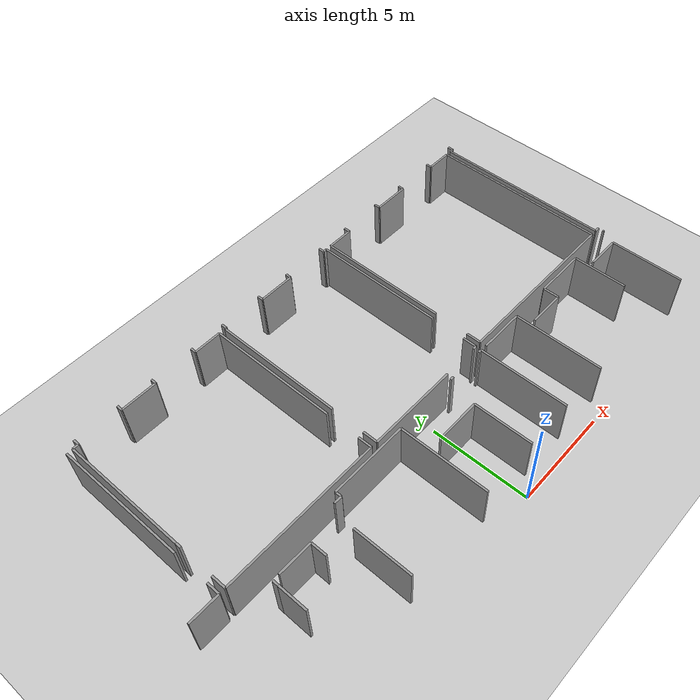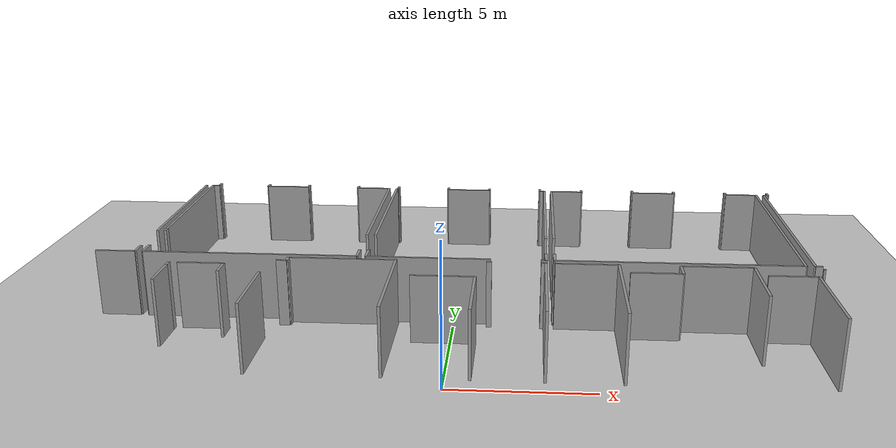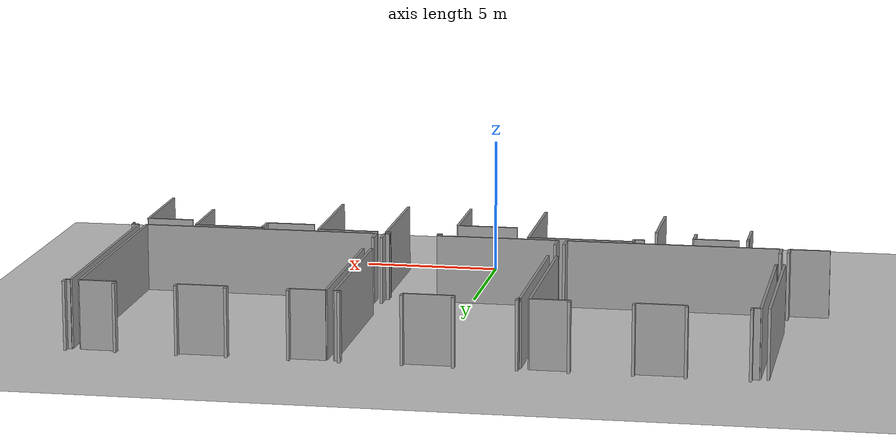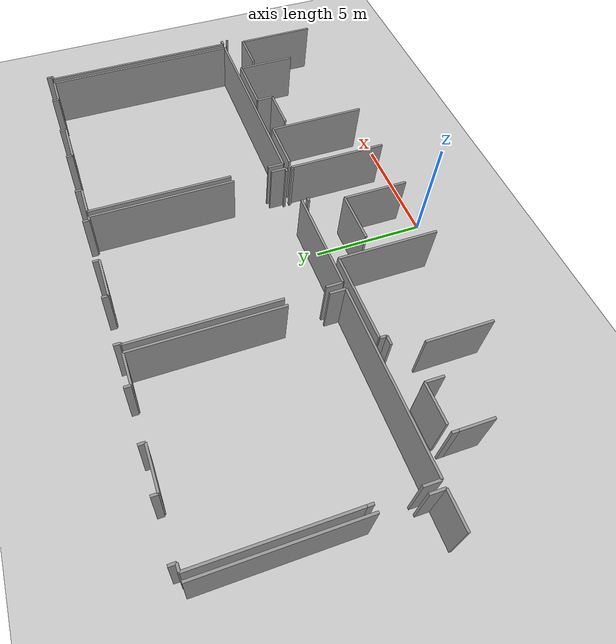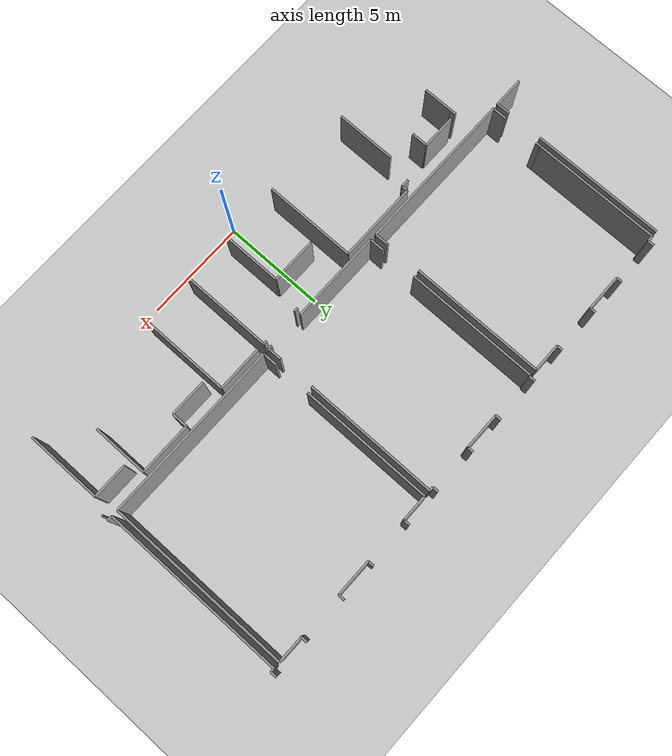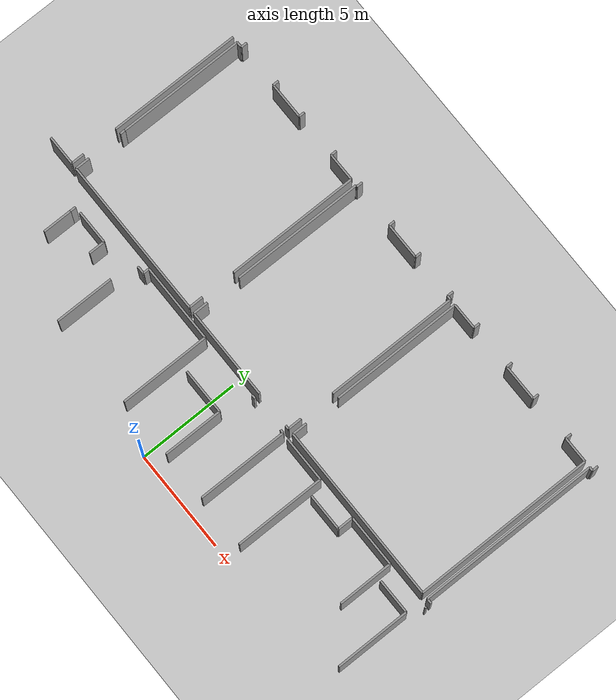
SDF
<sdf version="1.6">
 <world name="default">
  <model name="ground_plane">
   <static>1</static>
   <link name="link">
    <collision name="collision">
     <geometry><plane><normal>0 0 1</normal><size>100 100</size></plane></geometry>
     <surface><friction><ode><mu>100</mu><mu2>50</mu2></ode></friction></surface>
    </collision>
    <visual name="visual">
     <cast_shadows>0</cast_shadows>
     <geometry><plane><normal>0 0 1</normal><size>100 100</size></plane></geometry>
     <material>
      <script><uri>file://media/materials/scripts/gazebo.material</uri><name>Gazebo/Grey</name></script>
     </material>
    </visual>
   </link>
  </model>
  <model name="0510032268_A_40_1_102">
   <static>1</static>
   <link name="Wall_194">
    <collision name="Wall_194_Collision">
     <geometry><box><size>6.54766363446 0.1 2.5</size></box></geometry>
     <pose>3.27383181723 0 1.25 0 0 0</pose>
    </collision>
    <visual name="Wall_194_Visual">
     <pose>3.27383181723 0 1.25 0 0 0</pose>
     <geometry><box><size>6.54766363446 0.1 2.5</size></box></geometry>
     <material>
      <script><uri>file://media/materials/scripts/gazebo.material</uri><name>Gazebo/Grey</name></script>
      <ambient>1 1 1 1</ambient>
     </material>
    </visual>
    <pose>36.2145863354 -0.298988770464 0 0 0 -1.57079632679</pose>
   </link>
   <link name="Wall_195">
    <collision name="Wall_195_Collision">
     <geometry><box><size>0.643809789819 0.1 2.5</size></box></geometry>
     <pose>0.32190489491 0 1.25 0 0 0</pose>
    </collision>
    <visual name="Wall_195_Visual">
     <pose>0.32190489491 0 1.25 0 0 0</pose>
     <geometry><box><size>0.643809789819 0.1 2.5</size></box></geometry>
     <material>
      <script><uri>file://media/materials/scripts/gazebo.material</uri><name>Gazebo/Grey</name></script>
      <ambient>1 1 1 1</ambient>
     </material>
    </visual>
    <pose>36.2145863354 -8.62700039992 0 0 0 -1.57079632679</pose>
   </link>
   <link name="Wall_196">
    <collision name="Wall_196_Collision">
     <geometry><box><size>1.4752651859 0.1 2.5</size></box></geometry>
     <pose>0.73763259295 0 1.25 0 0 0</pose>
    </collision>
    <visual name="Wall_196_Visual">
     <pose>0.73763259295 0 1.25 0 0 0</pose>
     <geometry><box><size>1.4752651859 0.1 2.5</size></box></geometry>
     <material>
      <script><uri>file://media/materials/scripts/gazebo.material</uri><name>Gazebo/Grey</name></script>
      <ambient>1 1 1 1</ambient>
     </material>
    </visual>
    <pose>36.2145863354 -9.27081018974 0 0 0 3.14159265359</pose>
   </link>
   <link name="Wall_204">
    <collision name="Wall_204_Collision">
     <geometry><box><size>0.284388469571 0.1 2.5</size></box></geometry>
     <pose>0.142194234786 0 1.25 0 0 0</pose>
    </collision>
    <visual name="Wall_204_Visual">
     <pose>0.142194234786 0 1.25 0 0 0</pose>
     <geometry><box><size>0.284388469571 0.1 2.5</size></box></geometry>
     <material>
      <script><uri>file://media/materials/scripts/gazebo.material</uri><name>Gazebo/Grey</name></script>
      <ambient>1 1 1 1</ambient>
     </material>
    </visual>
    <pose>37.8306492056 -10.3486932731 0 0 0 -1.57079632679</pose>
   </link>
   <link name="Wall_205">
    <collision name="Wall_205_Collision">
     <geometry><box><size>1.44911160343 0.1 2.5</size></box></geometry>
     <pose>0.724555801715 0 1.25 0 0 0</pose>
    </collision>
    <visual name="Wall_205_Visual">
     <pose>0.724555801715 0 1.25 0 0 0</pose>
     <geometry><box><size>1.44911160343 0.1 2.5</size></box></geometry>
     <material>
      <script><uri>file://media/materials/scripts/gazebo.material</uri><name>Gazebo/Grey</name></script>
      <ambient>1 1 1 1</ambient>
     </material>
    </visual>
    <pose>37.8306492056 -10.6330817426 0 0 0 -1.57079632679</pose>
   </link>
   <link name="Wall_258">
    <collision name="Wall_258_Collision">
     <geometry><box><size>1.6726866458 0.1 2.5</size></box></geometry>
     <pose>0.836343322902 0 1.25 0 0 0</pose>
    </collision>
    <visual name="Wall_258_Visual">
     <pose>0.836343322902 0 1.25 0 0 0</pose>
     <geometry><box><size>1.6726866458 0.1 2.5</size></box></geometry>
     <material>
      <script><uri>file://media/materials/scripts/gazebo.material</uri><name>Gazebo/Grey</name></script>
      <ambient>1 1 1 1</ambient>
     </material>
    </visual>
    <pose>38.1373824834 -10.3497089462 0 0 0 0.0</pose>
   </link>
   <link name="Wall_259">
    <collision name="Wall_259_Collision">
     <geometry><box><size>0.796795551352 0.1 2.5</size></box></geometry>
     <pose>0.398397775676 0 1.25 0 0 0</pose>
    </collision>
    <visual name="Wall_259_Visual">
     <pose>0.398397775676 0 1.25 0 0 0</pose>
     <geometry><box><size>0.796795551352 0.1 2.5</size></box></geometry>
     <material>
      <script><uri>file://media/materials/scripts/gazebo.material</uri><name>Gazebo/Grey</name></script>
      <ambient>1 1 1 1</ambient>
     </material>
    </visual>
    <pose>39.8100691293 -10.3497089462 0 0 0 -1.57079632679</pose>
   </link>
   <link name="Wall_261">
    <collision name="Wall_261_Collision">
     <geometry><box><size>2.90990344758 0.1 2.5</size></box></geometry>
     <pose>1.45495172379 0 1.25 0 0 0</pose>
    </collision>
    <visual name="Wall_261_Visual">
     <pose>1.45495172379 0 1.25 0 0 0</pose>
     <geometry><box><size>2.90990344758 0.1 2.5</size></box></geometry>
     <material>
      <script><uri>file://media/materials/scripts/gazebo.material</uri><name>Gazebo/Grey</name></script>
      <ambient>1 1 1 1</ambient>
     </material>
    </visual>
    <pose>41.2834299281 -11.1465044975 0 0 0 -1.57079632679</pose>
   </link>
   <link name="Wall_265">
    <collision name="Wall_265_Collision">
     <geometry><box><size>0.38468618875 0.1 2.5</size></box></geometry>
     <pose>0.192343094375 0 1.25 0 0 0</pose>
    </collision>
    <visual name="Wall_265_Visual">
     <pose>0.192343094375 0 1.25 0 0 0</pose>
     <geometry><box><size>0.38468618875 0.1 2.5</size></box></geometry>
     <material>
      <script><uri>file://media/materials/scripts/gazebo.material</uri><name>Gazebo/Grey</name></script>
      <ambient>1 1 1 1</ambient>
     </material>
    </visual>
    <pose>41.5803873523 -9.8808488488 0 0 0 0.0</pose>
   </link>
   <link name="Wall_266">
    <collision name="Wall_266_Collision">
     <geometry><box><size>0.304828890821 0.1 2.5</size></box></geometry>
     <pose>0.152414445411 0 1.25 0 0 0</pose>
    </collision>
    <visual name="Wall_266_Visual">
     <pose>0.152414445411 0 1.25 0 0 0</pose>
     <geometry><box><size>0.304828890821 0.1 2.5</size></box></geometry>
     <material>
      <script><uri>file://media/materials/scripts/gazebo.material</uri><name>Gazebo/Grey</name></script>
      <ambient>1 1 1 1</ambient>
     </material>
    </visual>
    <pose>41.9650735411 -9.8808488488 0 0 0 1.57079632679</pose>
   </link>
   <link name="Wall_267">
    <collision name="Wall_267_Collision">
     <geometry><box><size>3.87631640756 0.1 2.5</size></box></geometry>
     <pose>1.93815820378 0 1.25 0 0 0</pose>
    </collision>
    <visual name="Wall_267_Visual">
     <pose>1.93815820378 0 1.25 0 0 0</pose>
     <geometry><box><size>3.87631640756 0.1 2.5</size></box></geometry>
     <material>
      <script><uri>file://media/materials/scripts/gazebo.material</uri><name>Gazebo/Grey</name></script>
      <ambient>1 1 1 1</ambient>
     </material>
    </visual>
    <pose>41.9650735411 -9.57601995798 0 0 0 0.0</pose>
   </link>
   <link name="Wall_268">
    <collision name="Wall_268_Collision">
     <geometry><box><size>4.46045540243 0.1 2.5</size></box></geometry>
     <pose>2.23022770121 0 1.25 0 0 0</pose>
    </collision>
    <visual name="Wall_268_Visual">
     <pose>2.23022770121 0 1.25 0 0 0</pose>
     <geometry><box><size>4.46045540243 0.1 2.5</size></box></geometry>
     <material>
      <script><uri>file://media/materials/scripts/gazebo.material</uri><name>Gazebo/Grey</name></script>
      <ambient>1 1 1 1</ambient>
     </material>
    </visual>
    <pose>45.8413899486 -9.57601995798 0 0 0 -1.57079632679</pose>
   </link>
   <link name="Wall_273">
    <collision name="Wall_273_Collision">
     <geometry><box><size>2.24476452254 0.1 2.5</size></box></geometry>
     <pose>1.12238226127 0 1.25 0 0 0</pose>
    </collision>
    <visual name="Wall_273_Visual">
     <pose>1.12238226127 0 1.25 0 0 0</pose>
     <geometry><box><size>2.24476452254 0.1 2.5</size></box></geometry>
     <material>
      <script><uri>file://media/materials/scripts/gazebo.material</uri><name>Gazebo/Grey</name></script>
      <ambient>1 1 1 1</ambient>
     </material>
    </visual>
    <pose>46.5037357726 -11.1079089195 0 0 0 0.0</pose>
   </link>
   <link name="Wall_274">
    <collision name="Wall_274_Collision">
     <geometry><box><size>2.93440656125 0.1 2.5</size></box></geometry>
     <pose>1.46720328062 0 1.25 0 0 0</pose>
    </collision>
    <visual name="Wall_274_Visual">
     <pose>1.46720328062 0 1.25 0 0 0</pose>
     <geometry><box><size>2.93440656125 0.1 2.5</size></box></geometry>
     <material>
      <script><uri>file://media/materials/scripts/gazebo.material</uri><name>Gazebo/Grey</name></script>
      <ambient>1 1 1 1</ambient>
     </material>
    </visual>
    <pose>48.7485002952 -11.1079089195 0 0 0 -1.57079632679</pose>
   </link>
   <link name="Wall_278">
    <collision name="Wall_278_Collision">
     <geometry><box><size>0.190311748164 0.1 2.5</size></box></geometry>
     <pose>0.0951558740819 0 1.25 0 0 0</pose>
    </collision>
    <visual name="Wall_278_Visual">
     <pose>0.0951558740819 0 1.25 0 0 0</pose>
     <geometry><box><size>0.190311748164 0.1 2.5</size></box></geometry>
     <material>
      <script><uri>file://media/materials/scripts/gazebo.material</uri><name>Gazebo/Grey</name></script>
      <ambient>1 1 1 1</ambient>
     </material>
    </visual>
    <pose>49.0741504847 -9.56941808279 0 0 0 0.0</pose>
   </link>
   <link name="Wall_279">
    <collision name="Wall_279_Collision">
     <geometry><box><size>0.169236531222 0.1 2.5</size></box></geometry>
     <pose>0.0846182656112 0 1.25 0 0 0</pose>
    </collision>
    <visual name="Wall_279_Visual">
     <pose>0.0846182656112 0 1.25 0 0 0</pose>
     <geometry><box><size>0.169236531222 0.1 2.5</size></box></geometry>
     <material>
      <script><uri>file://media/materials/scripts/gazebo.material</uri><name>Gazebo/Grey</name></script>
      <ambient>1 1 1 1</ambient>
     </material>
    </visual>
    <pose>51.0144669938 -9.56941808279 0 0 0 0.0</pose>
   </link>
   <link name="Wall_280">
    <collision name="Wall_280_Collision">
     <geometry><box><size>4.47822968178 0.1 2.5</size></box></geometry>
     <pose>2.23911484089 0 1.25 0 0 0</pose>
    </collision>
    <visual name="Wall_280_Visual">
     <pose>2.23911484089 0 1.25 0 0 0</pose>
     <geometry><box><size>4.47822968178 0.1 2.5</size></box></geometry>
     <material>
      <script><uri>file://media/materials/scripts/gazebo.material</uri><name>Gazebo/Grey</name></script>
      <ambient>1 1 1 1</ambient>
     </material>
    </visual>
    <pose>51.183703525 -9.56941808279 0 0 0 -1.57079632679</pose>
   </link>
   <link name="Wall_284">
    <collision name="Wall_284_Collision">
     <geometry><box><size>2.24209838064 0.1 2.5</size></box></geometry>
     <pose>1.12104919032 0 1.25 0 0 0</pose>
    </collision>
    <visual name="Wall_284_Visual">
     <pose>1.12104919032 0 1.25 0 0 0</pose>
     <geometry><box><size>2.24209838064 0.1 2.5</size></box></geometry>
     <material>
      <script><uri>file://media/materials/scripts/gazebo.material</uri><name>Gazebo/Grey</name></script>
      <ambient>1 1 1 1</ambient>
     </material>
    </visual>
    <pose>51.5097345919 -9.59227072767 0 0 0 0.0</pose>
   </link>
   <link name="Wall_285">
    <collision name="Wall_285_Collision">
     <geometry><box><size>4.46261370778 0.1 2.5</size></box></geometry>
     <pose>2.23130685389 0 1.25 0 0 0</pose>
    </collision>
    <visual name="Wall_285_Visual">
     <pose>2.23130685389 0 1.25 0 0 0</pose>
     <geometry><box><size>4.46261370778 0.1 2.5</size></box></geometry>
     <material>
      <script><uri>file://media/materials/scripts/gazebo.material</uri><name>Gazebo/Grey</name></script>
      <ambient>1 1 1 1</ambient>
     </material>
    </visual>
    <pose>53.7518329726 -9.59227072767 0 0 0 -1.57079632679</pose>
   </link>
   <link name="Wall_289">
    <collision name="Wall_289_Collision">
     <geometry><box><size>1.82008620525 0.1 2.5</size></box></geometry>
     <pose>0.910043102627 0 1.25 0 0 0</pose>
    </collision>
    <visual name="Wall_289_Visual">
     <pose>0.910043102627 0 1.25 0 0 0</pose>
     <geometry><box><size>1.82008620525 0.1 2.5</size></box></geometry>
     <material>
      <script><uri>file://media/materials/scripts/gazebo.material</uri><name>Gazebo/Grey</name></script>
      <ambient>1 1 1 1</ambient>
     </material>
    </visual>
    <pose>54.082942405 -10.3438688258 0 0 0 0.0</pose>
   </link>
   <link name="Wall_290">
    <collision name="Wall_290_Collision">
     <geometry><box><size>0.77013413233 0.1 2.5</size></box></geometry>
     <pose>0.385067066165 0 1.25 0 0 0</pose>
    </collision>
    <visual name="Wall_290_Visual">
     <pose>0.385067066165 0 1.25 0 0 0</pose>
     <geometry><box><size>0.77013413233 0.1 2.5</size></box></geometry>
     <material>
      <script><uri>file://media/materials/scripts/gazebo.material</uri><name>Gazebo/Grey</name></script>
      <ambient>1 1 1 1</ambient>
     </material>
    </visual>
    <pose>55.9030286102 -10.3438688258 0 0 0 1.57079632679</pose>
   </link>
   <link name="Wall_291">
    <collision name="Wall_291_Collision">
     <geometry><box><size>2.54895861767 0.1 2.5</size></box></geometry>
     <pose>1.27447930883 0 1.25 0 0 0</pose>
    </collision>
    <visual name="Wall_291_Visual">
     <pose>1.27447930883 0 1.25 0 0 0</pose>
     <geometry><box><size>2.54895861767 0.1 2.5</size></box></geometry>
     <material>
      <script><uri>file://media/materials/scripts/gazebo.material</uri><name>Gazebo/Grey</name></script>
      <ambient>1 1 1 1</ambient>
     </material>
    </visual>
    <pose>55.9030286102 -9.57373469349 0 0 0 0.0</pose>
   </link>
   <link name="Wall_292">
    <collision name="Wall_292_Collision">
     <geometry><box><size>2.70130958351 0.1 2.5</size></box></geometry>
     <pose>1.35065479176 0 1.25 0 0 0</pose>
    </collision>
    <visual name="Wall_292_Visual">
     <pose>1.35065479176 0 1.25 0 0 0</pose>
     <geometry><box><size>2.70130958351 0.1 2.5</size></box></geometry>
     <material>
      <script><uri>file://media/materials/scripts/gazebo.material</uri><name>Gazebo/Grey</name></script>
      <ambient>1 1 1 1</ambient>
     </material>
    </visual>
    <pose>58.4519872279 -9.57373469349 0 0 0 -1.57079632679</pose>
   </link>
   <link name="Wall_297">
    <collision name="Wall_297_Collision">
     <geometry><box><size>1.71775713986 0.1 2.5</size></box></geometry>
     <pose>0.858878569932 0 1.25 0 0 0</pose>
    </collision>
    <visual name="Wall_297_Visual">
     <pose>0.858878569932 0 1.25 0 0 0</pose>
     <geometry><box><size>1.71775713986 0.1 2.5</size></box></geometry>
     <material>
      <script><uri>file://media/materials/scripts/gazebo.material</uri><name>Gazebo/Grey</name></script>
      <ambient>1 1 1 1</ambient>
     </material>
    </visual>
    <pose>58.7691311551 -10.3455192946 0 0 0 0.0</pose>
   </link>
   <link name="Wall_298">
    <collision name="Wall_298_Collision">
     <geometry><box><size>3.68587770026 0.1 2.5</size></box></geometry>
     <pose>1.84293885013 0 1.25 0 0 0</pose>
    </collision>
    <visual name="Wall_298_Visual">
     <pose>1.84293885013 0 1.25 0 0 0</pose>
     <geometry><box><size>3.68587770026 0.1 2.5</size></box></geometry>
     <material>
      <script><uri>file://media/materials/scripts/gazebo.material</uri><name>Gazebo/Grey</name></script>
      <ambient>1 1 1 1</ambient>
     </material>
    </visual>
    <pose>60.486888295 -10.3455192946 0 0 0 -1.57079632679</pose>
   </link>
   <link name="Wall_303">
    <collision name="Wall_303_Collision">
     <geometry><box><size>0.0745250141242 0.1 2.5</size></box></geometry>
     <pose>0.0372625070621 0 1.25 0 0 0</pose>
    </collision>
    <visual name="Wall_303_Visual">
     <pose>0.0372625070621 0 1.25 0 0 0</pose>
     <geometry><box><size>0.0745250141242 0.1 2.5</size></box></geometry>
     <material>
      <script><uri>file://media/materials/scripts/gazebo.material</uri><name>Gazebo/Grey</name></script>
      <ambient>1 1 1 1</ambient>
     </material>
    </visual>
    <pose>60.8146967898 -9.56865632796 0 0 0 0.0</pose>
   </link>
   <link name="Wall_423">
    <collision name="Wall_423_Collision">
     <geometry><box><size>8.97639194825 0.1 2.5</size></box></geometry>
     <pose>4.48819597413 0 1.25 0 0 0</pose>
    </collision>
    <visual name="Wall_423_Visual">
     <pose>4.48819597413 0 1.25 0 0 0</pose>
     <geometry><box><size>8.97639194825 0.1 2.5</size></box></geometry>
     <material>
      <script><uri>file://media/materials/scripts/gazebo.material</uri><name>Gazebo/Grey</name></script>
      <ambient>1 1 1 1</ambient>
     </material>
    </visual>
    <pose>60.6091499451 -9.27957037028 0 0 0 1.57079632679</pose>
   </link>
   <link name="Wall_424">
    <collision name="Wall_424_Collision">
     <geometry><box><size>0.181678526766 0.1 2.5</size></box></geometry>
     <pose>0.0908392633831 0 1.25 0 0 0</pose>
    </collision>
    <visual name="Wall_424_Visual">
     <pose>0.0908392633831 0 1.25 0 0 0</pose>
     <geometry><box><size>0.181678526766 0.1 2.5</size></box></geometry>
     <material>
      <script><uri>file://media/materials/scripts/gazebo.material</uri><name>Gazebo/Grey</name></script>
      <ambient>1 1 1 1</ambient>
     </material>
    </visual>
    <pose>60.6091499451 -0.303178422025 0 0 0 0.0</pose>
   </link>
   <link name="Wall_425">
    <collision name="Wall_425_Collision">
     <geometry><box><size>0.29505303718 0.1 2.5</size></box></geometry>
     <pose>0.14752651859 0 1.25 0 0 0</pose>
    </collision>
    <visual name="Wall_425_Visual">
     <pose>0.14752651859 0 1.25 0 0 0</pose>
     <geometry><box><size>0.29505303718 0.1 2.5</size></box></geometry>
     <material>
      <script><uri>file://media/materials/scripts/gazebo.material</uri><name>Gazebo/Grey</name></script>
      <ambient>1 1 1 1</ambient>
     </material>
    </visual>
    <pose>60.7908284719 -0.303178422025 0 0 0 1.57079632679</pose>
   </link>
   <link name="Wall_431">
    <collision name="Wall_431_Collision">
     <geometry><box><size>0.255738850414 0.1 2.5</size></box></geometry>
     <pose>0.127869425207 0 1.25 0 0 0</pose>
    </collision>
    <visual name="Wall_431_Visual">
     <pose>0.127869425207 0 1.25 0 0 0</pose>
     <geometry><box><size>0.255738850414 0.1 2.5</size></box></geometry>
     <material>
      <script><uri>file://media/materials/scripts/gazebo.material</uri><name>Gazebo/Grey</name></script>
      <ambient>1 1 1 1</ambient>
     </material>
    </visual>
    <pose>60.8648456494 -9.28426785839 0 0 0 3.12322331981</pose>
   </link>
   <link name="Wall_432">
    <collision name="Wall_432_Collision">
     <geometry><box><size>0.725444515683 0.1 2.5</size></box></geometry>
     <pose>0.362722257841 0 1.25 0 0 0</pose>
    </collision>
    <visual name="Wall_432_Visual">
     <pose>0.362722257841 0 1.25 0 0 0</pose>
     <geometry><box><size>0.725444515683 0.1 2.5</size></box></geometry>
     <material>
      <script><uri>file://media/materials/scripts/gazebo.material</uri><name>Gazebo/Grey</name></script>
      <ambient>1 1 1 1</ambient>
     </material>
    </visual>
    <pose>51.4985621878 -9.27461896389 0 0 0 1.57079632679</pose>
   </link>
   <link name="Wall_433">
    <collision name="Wall_433_Collision">
     <geometry><box><size>6.47961353638 0.1 2.5</size></box></geometry>
     <pose>3.23980676819 0 1.25 0 0 0</pose>
    </collision>
    <visual name="Wall_433_Visual">
     <pose>3.23980676819 0 1.25 0 0 0</pose>
     <geometry><box><size>6.47961353638 0.1 2.5</size></box></geometry>
     <material>
      <script><uri>file://media/materials/scripts/gazebo.material</uri><name>Gazebo/Grey</name></script>
      <ambient>1 1 1 1</ambient>
     </material>
    </visual>
    <pose>51.4985621878 -6.78545810031 0 0 0 1.57079632679</pose>
   </link>
   <link name="Wall_434">
    <collision name="Wall_434_Collision">
     <geometry><box><size>1.29777631069 0.1 2.5</size></box></geometry>
     <pose>0.648888155347 0 1.25 0 0 0</pose>
    </collision>
    <visual name="Wall_434_Visual">
     <pose>0.648888155347 0 1.25 0 0 0</pose>
     <geometry><box><size>1.29777631069 0.1 2.5</size></box></geometry>
     <material>
      <script><uri>file://media/materials/scripts/gazebo.material</uri><name>Gazebo/Grey</name></script>
      <ambient>1 1 1 1</ambient>
     </material>
    </visual>
    <pose>51.4985621878 -0.305844563927 0 0 0 0.0</pose>
   </link>
   <link name="Wall_435">
    <collision name="Wall_435_Collision">
     <geometry><box><size>0.302924503748 0.1 2.5</size></box></geometry>
     <pose>0.151462251874 0 1.25 0 0 0</pose>
    </collision>
    <visual name="Wall_435_Visual">
     <pose>0.151462251874 0 1.25 0 0 0</pose>
     <geometry><box><size>0.302924503748 0.1 2.5</size></box></geometry>
     <material>
      <script><uri>file://media/materials/scripts/gazebo.material</uri><name>Gazebo/Grey</name></script>
      <ambient>1 1 1 1</ambient>
     </material>
    </visual>
    <pose>52.7963384985 -0.305844563927 0 0 0 1.57079632679</pose>
   </link>
   <link name="Wall_436">
    <collision name="Wall_436_Collision">
     <geometry><box><size>0.290482508205 0.1 2.5</size></box></geometry>
     <pose>0.145241254102 0 1.25 0 0 0</pose>
    </collision>
    <visual name="Wall_436_Visual">
     <pose>0.145241254102 0 1.25 0 0 0</pose>
     <geometry><box><size>0.290482508205 0.1 2.5</size></box></geometry>
     <material>
      <script><uri>file://media/materials/scripts/gazebo.material</uri><name>Gazebo/Grey</name></script>
      <ambient>1 1 1 1</ambient>
     </material>
    </visual>
    <pose>55.0042848709 -0.00292006017862 0 0 0 -1.57079632679</pose>
   </link>
   <link name="Wall_437">
    <collision name="Wall_437_Collision">
     <geometry><box><size>1.78047495414 0.1 2.5</size></box></geometry>
     <pose>0.890237477068 0 1.25 0 0 0</pose>
    </collision>
    <visual name="Wall_437_Visual">
     <pose>0.890237477068 0 1.25 0 0 0</pose>
     <geometry><box><size>1.78047495414 0.1 2.5</size></box></geometry>
     <material>
      <script><uri>file://media/materials/scripts/gazebo.material</uri><name>Gazebo/Grey</name></script>
      <ambient>1 1 1 1</ambient>
     </material>
    </visual>
    <pose>55.0042848709 -0.293402568383 0 0 0 0.0</pose>
   </link>
   <link name="Wall_438">
    <collision name="Wall_438_Collision">
     <geometry><box><size>0.286292856644 0.1 2.5</size></box></geometry>
     <pose>0.143146428322 0 1.25 0 0 0</pose>
    </collision>
    <visual name="Wall_438_Visual">
     <pose>0.143146428322 0 1.25 0 0 0</pose>
     <geometry><box><size>0.286292856644 0.1 2.5</size></box></geometry>
     <material>
      <script><uri>file://media/materials/scripts/gazebo.material</uri><name>Gazebo/Grey</name></script>
      <ambient>1 1 1 1</ambient>
     </material>
    </visual>
    <pose>56.7847598251 -0.293402568383 0 0 0 1.57079632679</pose>
   </link>
   <link name="Wall_439">
    <collision name="Wall_439_Collision">
     <geometry><box><size>0.295560873733 0.1 2.5</size></box></geometry>
     <pose>0.147780436866 0 1.25 0 0 0</pose>
    </collision>
    <visual name="Wall_439_Visual">
     <pose>0.147780436866 0 1.25 0 0 0</pose>
     <geometry><box><size>0.295560873733 0.1 2.5</size></box></geometry>
     <material>
      <script><uri>file://media/materials/scripts/gazebo.material</uri><name>Gazebo/Grey</name></script>
      <ambient>1 1 1 1</ambient>
     </material>
    </visual>
    <pose>58.9943566663 -0.00710971173928 0 0 0 -1.57079632679</pose>
   </link>
   <link name="Wall_440">
    <collision name="Wall_440_Collision">
     <geometry><box><size>1.29206314948 0.1 2.5</size></box></geometry>
     <pose>0.646031574738 0 1.25 0 0 0</pose>
    </collision>
    <visual name="Wall_440_Visual">
     <pose>0.646031574738 0 1.25 0 0 0</pose>
     <geometry><box><size>1.29206314948 0.1 2.5</size></box></geometry>
     <material>
      <script><uri>file://media/materials/scripts/gazebo.material</uri><name>Gazebo/Grey</name></script>
      <ambient>1 1 1 1</ambient>
     </material>
    </visual>
    <pose>58.9943566663 -0.302670585472 0 0 0 0.0</pose>
   </link>
   <link name="Wall_441">
    <collision name="Wall_441_Collision">
     <geometry><box><size>8.9802007224 0.1 2.5</size></box></geometry>
     <pose>4.4901003612 0 1.25 0 0 0</pose>
    </collision>
    <visual name="Wall_441_Visual">
     <pose>4.4901003612 0 1.25 0 0 0</pose>
     <geometry><box><size>8.9802007224 0.1 2.5</size></box></geometry>
     <material>
      <script><uri>file://media/materials/scripts/gazebo.material</uri><name>Gazebo/Grey</name></script>
      <ambient>1 1 1 1</ambient>
     </material>
    </visual>
    <pose>60.2864198158 -0.302670585472 0 0 0 -1.57079632679</pose>
   </link>
   <link name="Wall_442">
    <collision name="Wall_442_Collision">
     <geometry><box><size>8.78786150275 0.1 2.5</size></box></geometry>
     <pose>4.39393075138 0 1.25 0 0 0</pose>
    </collision>
    <visual name="Wall_442_Visual">
     <pose>4.39393075138 0 1.25 0 0 0</pose>
     <geometry><box><size>8.78786150275 0.1 2.5</size></box></geometry>
     <material>
      <script><uri>file://media/materials/scripts/gazebo.material</uri><name>Gazebo/Grey</name></script>
      <ambient>1 1 1 1</ambient>
     </material>
    </visual>
    <pose>60.2864198158 -9.28287130787 0 0 0 3.14065359177</pose>
   </link>
   <link name="Wall_443">
    <collision name="Wall_443_Collision">
     <geometry><box><size>0.0693196894579 0.1 2.5</size></box></geometry>
     <pose>0.034659844729 0 1.25 0 0 0</pose>
    </collision>
    <visual name="Wall_443_Visual">
     <pose>0.034659844729 0 1.25 0 0 0</pose>
     <geometry><box><size>0.0693196894579 0.1 2.5</size></box></geometry>
     <material>
      <script><uri>file://media/materials/scripts/gazebo.material</uri><name>Gazebo/Grey</name></script>
      <ambient>1 1 1 1</ambient>
     </material>
    </visual>
    <pose>44.7251652056 -0.307621991862 0 0 0 0.0</pose>
   </link>
   <link name="Wall_444">
    <collision name="Wall_444_Collision">
     <geometry><box><size>0.296703505977 0.1 2.5</size></box></geometry>
     <pose>0.148351752988 0 1.25 0 0 0</pose>
    </collision>
    <visual name="Wall_444_Visual">
     <pose>0.148351752988 0 1.25 0 0 0</pose>
     <geometry><box><size>0.296703505977 0.1 2.5</size></box></geometry>
     <material>
      <script><uri>file://media/materials/scripts/gazebo.material</uri><name>Gazebo/Grey</name></script>
      <ambient>1 1 1 1</ambient>
     </material>
    </visual>
    <pose>44.794484895 -0.307621991862 0 0 0 1.57079632679</pose>
   </link>
   <link name="Wall_445">
    <collision name="Wall_445_Collision">
     <geometry><box><size>0.288070284579 0.1 2.5</size></box></geometry>
     <pose>0.144035142289 0 1.25 0 0 0</pose>
    </collision>
    <visual name="Wall_445_Visual">
     <pose>0.144035142289 0 1.25 0 0 0</pose>
     <geometry><box><size>0.288070284579 0.1 2.5</size></box></geometry>
     <material>
      <script><uri>file://media/materials/scripts/gazebo.material</uri><name>Gazebo/Grey</name></script>
      <ambient>1 1 1 1</ambient>
     </material>
    </visual>
    <pose>47.0053513277 -0.0109184858853 0 0 0 -1.57079632679</pose>
   </link>
   <link name="Wall_446">
    <collision name="Wall_446_Collision">
     <geometry><box><size>1.79736051952 0.1 2.5</size></box></geometry>
     <pose>0.898680259758 0 1.25 0 0 0</pose>
    </collision>
    <visual name="Wall_446_Visual">
     <pose>0.898680259758 0 1.25 0 0 0</pose>
     <geometry><box><size>1.79736051952 0.1 2.5</size></box></geometry>
     <material>
      <script><uri>file://media/materials/scripts/gazebo.material</uri><name>Gazebo/Grey</name></script>
      <ambient>1 1 1 1</ambient>
     </material>
    </visual>
    <pose>47.0053513277 -0.298988770464 0 0 0 0.0</pose>
   </link>
   <link name="Wall_447">
    <collision name="Wall_447_Collision">
     <geometry><box><size>0.28870508027 0.1 2.5</size></box></geometry>
     <pose>0.144352540135 0 1.25 0 0 0</pose>
    </collision>
    <visual name="Wall_447_Visual">
     <pose>0.144352540135 0 1.25 0 0 0</pose>
     <geometry><box><size>0.28870508027 0.1 2.5</size></box></geometry>
     <material>
      <script><uri>file://media/materials/scripts/gazebo.material</uri><name>Gazebo/Grey</name></script>
      <ambient>1 1 1 1</ambient>
     </material>
    </visual>
    <pose>48.8027118472 -0.298988770464 0 0 0 1.57079632679</pose>
   </link>
   <link name="Wall_448">
    <collision name="Wall_448_Collision">
     <geometry><box><size>0.295941751147 0.1 2.5</size></box></geometry>
     <pose>0.147970875574 0 1.25 0 0 0</pose>
    </collision>
    <visual name="Wall_448_Visual">
     <pose>0.147970875574 0 1.25 0 0 0</pose>
     <geometry><box><size>0.295941751147 0.1 2.5</size></box></geometry>
     <material>
      <script><uri>file://media/materials/scripts/gazebo.material</uri><name>Gazebo/Grey</name></script>
      <ambient>1 1 1 1</ambient>
     </material>
    </visual>
    <pose>51.0041833036 -0.0102836901943 0 0 0 -1.57079632679</pose>
   </link>
   <link name="Wall_449">
    <collision name="Wall_449_Collision">
     <geometry><box><size>0.191200462131 0.1 2.5</size></box></geometry>
     <pose>0.0956002310656 0 1.25 0 0 0</pose>
    </collision>
    <visual name="Wall_449_Visual">
     <pose>0.0956002310656 0 1.25 0 0 0</pose>
     <geometry><box><size>0.191200462131 0.1 2.5</size></box></geometry>
     <material>
      <script><uri>file://media/materials/scripts/gazebo.material</uri><name>Gazebo/Grey</name></script>
      <ambient>1 1 1 1</ambient>
     </material>
    </visual>
    <pose>51.0041833036 -0.306225441342 0 0 0 0.0</pose>
   </link>
   <link name="Wall_450">
    <collision name="Wall_450_Collision">
     <geometry><box><size>6.53433292495 0.1 2.5</size></box></geometry>
     <pose>3.26716646247 0 1.25 0 0 0</pose>
    </collision>
    <visual name="Wall_450_Visual">
     <pose>3.26716646247 0 1.25 0 0 0</pose>
     <geometry><box><size>6.53433292495 0.1 2.5</size></box></geometry>
     <material>
      <script><uri>file://media/materials/scripts/gazebo.material</uri><name>Gazebo/Grey</name></script>
      <ambient>1 1 1 1</ambient>
     </material>
    </visual>
    <pose>51.1953837657 -0.306225441342 0 0 0 -1.57079632679</pose>
   </link>
   <link name="Wall_451">
    <collision name="Wall_451_Collision">
     <geometry><box><size>0.693069935441 0.1 2.5</size></box></geometry>
     <pose>0.346534967721 0 1.25 0 0 0</pose>
    </collision>
    <visual name="Wall_451_Visual">
     <pose>0.346534967721 0 1.25 0 0 0</pose>
     <geometry><box><size>0.693069935441 0.1 2.5</size></box></geometry>
     <material>
      <script><uri>file://media/materials/scripts/gazebo.material</uri><name>Gazebo/Grey</name></script>
      <ambient>1 1 1 1</ambient>
     </material>
    </visual>
    <pose>51.1953837657 -8.59411798313 0 0 0 -1.57079632679</pose>
   </link>
   <link name="Wall_452">
    <collision name="Wall_452_Collision">
     <geometry><box><size>0.183709872977 0.1 2.5</size></box></geometry>
     <pose>0.0918549364887 0 1.25 0 0 0</pose>
    </collision>
    <visual name="Wall_452_Visual">
     <pose>0.0918549364887 0 1.25 0 0 0</pose>
     <geometry><box><size>0.183709872977 0.1 2.5</size></box></geometry>
     <material>
      <script><uri>file://media/materials/scripts/gazebo.material</uri><name>Gazebo/Grey</name></script>
      <ambient>1 1 1 1</ambient>
     </material>
    </visual>
    <pose>51.1953837657 -9.28718791857 0 0 0 3.14159265359</pose>
   </link>
   <link name="Wall_453">
    <collision name="Wall_453_Collision">
     <geometry><box><size>4.50476414166 0.1 2.5</size></box></geometry>
     <pose>2.25238207083 0 1.25 0 0 0</pose>
    </collision>
    <visual name="Wall_453_Visual">
     <pose>2.25238207083 0 1.25 0 0 0</pose>
     <geometry><box><size>4.50476414166 0.1 2.5</size></box></geometry>
     <material>
      <script><uri>file://media/materials/scripts/gazebo.material</uri><name>Gazebo/Grey</name></script>
      <ambient>1 1 1 1</ambient>
     </material>
    </visual>
    <pose>49.2163447195 -9.28718791857 0 0 0 3.14159265359</pose>
   </link>
   <link name="Wall_454">
    <collision name="Wall_454_Collision">
     <geometry><box><size>0.738013470365 0.1 2.5</size></box></geometry>
     <pose>0.369006735182 0 1.25 0 0 0</pose>
    </collision>
    <visual name="Wall_454_Visual">
     <pose>0.369006735182 0 1.25 0 0 0</pose>
     <geometry><box><size>0.738013470365 0.1 2.5</size></box></geometry>
     <material>
      <script><uri>file://media/materials/scripts/gazebo.material</uri><name>Gazebo/Grey</name></script>
      <ambient>1 1 1 1</ambient>
     </material>
    </visual>
    <pose>44.7115805778 -9.28718791857 0 0 0 1.57079632679</pose>
   </link>
   <link name="Wall_455">
    <collision name="Wall_455_Collision">
     <geometry><box><size>6.4947358809 0.1 2.5</size></box></geometry>
     <pose>3.24736794045 0 1.25 0 0 0</pose>
    </collision>
    <visual name="Wall_455_Visual">
     <pose>3.24736794045 0 1.25 0 0 0</pose>
     <geometry><box><size>6.4947358809 0.1 2.5</size></box></geometry>
     <material>
      <script><uri>file://media/materials/scripts/gazebo.material</uri><name>Gazebo/Grey</name></script>
      <ambient>1 1 1 1</ambient>
     </material>
    </visual>
    <pose>44.7115805778 -6.80234366569 0 0 0 1.56870468859</pose>
   </link>
   <link name="Wall_456">
    <collision name="Wall_456_Collision">
     <geometry><box><size>6.26302124661 0.1 2.5</size></box></geometry>
     <pose>3.13151062331 0 1.25 0 0 0</pose>
    </collision>
    <visual name="Wall_456_Visual">
     <pose>3.13151062331 0 1.25 0 0 0</pose>
     <geometry><box><size>6.26302124661 0.1 2.5</size></box></geometry>
     <material>
      <script><uri>file://media/materials/scripts/gazebo.material</uri><name>Gazebo/Grey</name></script>
      <ambient>1 1 1 1</ambient>
     </material>
    </visual>
    <pose>36.5064653941 -6.56353352673 0 0 0 1.57079632679</pose>
   </link>
   <link name="Wall_457">
    <collision name="Wall_457_Collision">
     <geometry><box><size>0.282991919051 0.1 2.5</size></box></geometry>
     <pose>0.141495959525 0 1.25 0 0 0</pose>
    </collision>
    <visual name="Wall_457_Visual">
     <pose>0.141495959525 0 1.25 0 0 0</pose>
     <geometry><box><size>0.282991919051 0.1 2.5</size></box></geometry>
     <material>
      <script><uri>file://media/materials/scripts/gazebo.material</uri><name>Gazebo/Grey</name></script>
      <ambient>1 1 1 1</ambient>
     </material>
    </visual>
    <pose>36.5064653941 -0.300512280123 0 0 0 0.0</pose>
   </link>
   <link name="Wall_458">
    <collision name="Wall_458_Collision">
     <geometry><box><size>0.300512280123 0.1 2.5</size></box></geometry>
     <pose>0.150256140061 0 1.25 0 0 0</pose>
    </collision>
    <visual name="Wall_458_Visual">
     <pose>0.150256140061 0 1.25 0 0 0</pose>
     <geometry><box><size>0.300512280123 0.1 2.5</size></box></geometry>
     <material>
      <script><uri>file://media/materials/scripts/gazebo.material</uri><name>Gazebo/Grey</name></script>
      <ambient>1 1 1 1</ambient>
     </material>
    </visual>
    <pose>36.7894573132 -0.300512280123 0 0 0 1.57079632679</pose>
   </link>
   <link name="Wall_459">
    <collision name="Wall_459_Collision">
     <geometry><box><size>0.2851502244 0.1 2.5</size></box></geometry>
     <pose>0.1425751122 0 1.25 0 0 0</pose>
    </collision>
    <visual name="Wall_459_Visual">
     <pose>0.1425751122 0 1.25 0 0 0</pose>
     <geometry><box><size>0.2851502244 0.1 2.5</size></box></geometry>
     <material>
      <script><uri>file://media/materials/scripts/gazebo.material</uri><name>Gazebo/Grey</name></script>
      <ambient>1 1 1 1</ambient>
     </material>
    </visual>
    <pose>38.9924522792 -0.0 0 0 0 -1.57079632679</pose>
   </link>
   <link name="Wall_460">
    <collision name="Wall_460_Collision">
     <geometry><box><size>1.79824923348 0.1 2.5</size></box></geometry>
     <pose>0.899124616742 0 1.25 0 0 0</pose>
    </collision>
    <visual name="Wall_460_Visual">
     <pose>0.899124616742 0 1.25 0 0 0</pose>
     <geometry><box><size>1.79824923348 0.1 2.5</size></box></geometry>
     <material>
      <script><uri>file://media/materials/scripts/gazebo.material</uri><name>Gazebo/Grey</name></script>
      <ambient>1 1 1 1</ambient>
     </material>
    </visual>
    <pose>38.9924522792 -0.2851502244 0 0 0 0.0</pose>
   </link>
   <link name="Wall_461">
    <collision name="Wall_461_Collision">
     <geometry><box><size>0.281976245945 0.1 2.5</size></box></geometry>
     <pose>0.140988122973 0 1.25 0 0 0</pose>
    </collision>
    <visual name="Wall_461_Visual">
     <pose>0.140988122973 0 1.25 0 0 0</pose>
     <geometry><box><size>0.281976245945 0.1 2.5</size></box></geometry>
     <material>
      <script><uri>file://media/materials/scripts/gazebo.material</uri><name>Gazebo/Grey</name></script>
      <ambient>1 1 1 1</ambient>
     </material>
    </visual>
    <pose>40.7907015127 -0.2851502244 0 0 0 1.57079632679</pose>
   </link>
   <link name="Wall_462">
    <collision name="Wall_462_Collision">
     <geometry><box><size>0.287435488888 0.1 2.5</size></box></geometry>
     <pose>0.143717744444 0 1.25 0 0 0</pose>
    </collision>
    <visual name="Wall_462_Visual">
     <pose>0.143717744444 0 1.25 0 0 0</pose>
     <geometry><box><size>0.287435488888 0.1 2.5</size></box></geometry>
     <material>
      <script><uri>file://media/materials/scripts/gazebo.material</uri><name>Gazebo/Grey</name></script>
      <ambient>1 1 1 1</ambient>
     </material>
    </visual>
    <pose>43.0033453733 -0.00317397845503 0 0 0 -1.57079632679</pose>
   </link>
   <link name="Wall_463">
    <collision name="Wall_463_Collision">
     <geometry><box><size>1.38550507519 0.1 2.5</size></box></geometry>
     <pose>0.692752537596 0 1.25 0 0 0</pose>
    </collision>
    <visual name="Wall_463_Visual">
     <pose>0.692752537596 0 1.25 0 0 0</pose>
     <geometry><box><size>1.38550507519 0.1 2.5</size></box></geometry>
     <material>
      <script><uri>file://media/materials/scripts/gazebo.material</uri><name>Gazebo/Grey</name></script>
      <ambient>1 1 1 1</ambient>
     </material>
    </visual>
    <pose>43.0033453733 -0.290609467343 0 0 0 0.0</pose>
   </link>
   <link name="Wall_464">
    <collision name="Wall_464_Collision">
     <geometry><box><size>6.54144263669 0.1 2.5</size></box></geometry>
     <pose>3.27072131834 0 1.25 0 0 0</pose>
    </collision>
    <visual name="Wall_464_Visual">
     <pose>3.27072131834 0 1.25 0 0 0</pose>
     <geometry><box><size>6.54144263669 0.1 2.5</size></box></geometry>
     <material>
      <script><uri>file://media/materials/scripts/gazebo.material</uri><name>Gazebo/Grey</name></script>
      <ambient>1 1 1 1</ambient>
     </material>
    </visual>
    <pose>44.3888504485 -0.290609467343 0 0 0 -1.57079632679</pose>
   </link>
   <link name="Wall_465">
    <collision name="Wall_465_Collision">
     <geometry><box><size>0.701449238563 0.1 2.5</size></box></geometry>
     <pose>0.350724619281 0 1.25 0 0 0</pose>
    </collision>
    <visual name="Wall_465_Visual">
     <pose>0.350724619281 0 1.25 0 0 0</pose>
     <geometry><box><size>0.701449238563 0.1 2.5</size></box></geometry>
     <material>
      <script><uri>file://media/materials/scripts/gazebo.material</uri><name>Gazebo/Grey</name></script>
      <ambient>1 1 1 1</ambient>
     </material>
    </visual>
    <pose>44.3888504485 -8.56834527807 0 0 0 -1.57079632679</pose>
   </link>
   <link name="Wall_466">
    <collision name="Wall_466_Collision">
     <geometry><box><size>7.88251201351 0.1 2.5</size></box></geometry>
     <pose>3.94125600675 0 1.25 0 0 0</pose>
    </collision>
    <visual name="Wall_466_Visual">
     <pose>3.94125600675 0 1.25 0 0 0</pose>
     <geometry><box><size>7.88251201351 0.1 2.5</size></box></geometry>
     <material>
      <script><uri>file://media/materials/scripts/gazebo.material</uri><name>Gazebo/Grey</name></script>
      <ambient>1 1 1 1</ambient>
     </material>
    </visual>
    <pose>44.3888504485 -9.26979451663 0 0 0 3.14159265359</pose>
   </link>
   <link name="Wall_467">
    <collision name="Wall_467_Collision">
     <geometry><box><size>0.7171921717 0.1 2.5</size></box></geometry>
     <pose>0.35859608585 0 1.25 0 0 0</pose>
    </collision>
    <visual name="Wall_467_Visual">
     <pose>0.35859608585 0 1.25 0 0 0</pose>
     <geometry><box><size>0.7171921717 0.1 2.5</size></box></geometry>
     <material>
      <script><uri>file://media/materials/scripts/gazebo.material</uri><name>Gazebo/Grey</name></script>
      <ambient>1 1 1 1</ambient>
     </material>
    </visual>
    <pose>36.506338435 -9.26979451663 0 0 0 1.57079632679</pose>
   </link>
   <link name="Wall_468">
    <collision name="Wall_468_Collision">
     <geometry><box><size>0.257981000065 0.1 2.5</size></box></geometry>
     <pose>0.128990500033 0 1.25 0 0 0</pose>
    </collision>
    <visual name="Wall_468_Visual">
     <pose>0.128990500033 0 1.25 0 0 0</pose>
     <geometry><box><size>0.257981000065 0.1 2.5</size></box></geometry>
     <material>
      <script><uri>file://media/materials/scripts/gazebo.material</uri><name>Gazebo/Grey</name></script>
      <ambient>1 1 1 1</ambient>
     </material>
    </visual>
    <pose>36.506338435 -6.82151449556 0 0 0 1.57030420085</pose>
   </link>
   <pose>-47.9 14.7321752544 0 0 0 0</pose>
  </model>
 </world>
</sdf>
